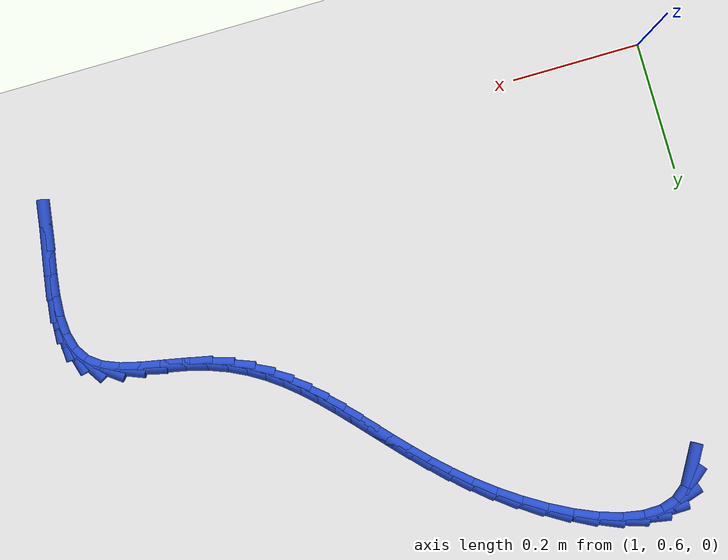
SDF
<sdf version="1.6">
 <world name="default">
  <model name="ground_plane">
   <static>1</static>
   <link name="link">
    <collision name="collision">
     <geometry><plane><normal>0 0 1</normal><size>100 100</size></plane></geometry>
     <surface><friction><ode><mu>100</mu><mu2>50</mu2></ode></friction></surface>
    </collision>
    <visual name="visual">
     <cast_shadows>0</cast_shadows>
     <geometry><plane><normal>0 0 1</normal><size>100 100</size></plane></geometry>
     <material>
      <script><uri>file://media/materials/scripts/gazebo.material</uri><name>Gazebo/WhiteGlow</name></script>
     </material>
    </visual>
   </link>
  </model>
  <model name="line">
   <link name="link_57">
    <pose>1.1085164473224831 1.2484397005960615 0.01 0 1.57 1.0574062370758766</pose>
    <collision name="collision">
     <geometry><cylinder><radius>0.01</radius><length>0.08</length></cylinder></geometry>
    </collision>
    <visual name="visual">
     <material>
      <script><name>Gazebo/Blue</name><uri>file://media/materials/scripts/gazebo.material</uri></script>
     </material>
     <geometry><cylinder><radius>0.01</radius><length>0.08</length></cylinder></geometry>
    </visual>
   </link>
   <link name="link_58">
    <pose>1.1227737843923586 1.2737268280903375 0.01 0 1.57 0.6829167306893079</pose>
    <collision name="collision">
     <geometry><cylinder><radius>0.01</radius><length>0.08</length></cylinder></geometry>
    </collision>
    <visual name="visual">
     <material>
      <script><name>Gazebo/Blue</name><uri>file://media/materials/scripts/gazebo.material</uri></script>
     </material>
     <geometry><cylinder><radius>0.01</radius><length>0.08</length></cylinder></geometry>
    </visual>
   </link>
   <link name="link_59">
    <pose>1.1429402737580883 1.2901322041058931 0.01 0 1.57 0.30402561338667844</pose>
    <collision name="collision">
     <geometry><cylinder><radius>0.01</radius><length>0.08</length></cylinder></geometry>
    </collision>
    <visual name="visual">
     <material>
      <script><name>Gazebo/Blue</name><uri>file://media/materials/scripts/gazebo.material</uri></script>
     </material>
     <geometry><cylinder><radius>0.01</radius><length>0.08</length></cylinder></geometry>
    </visual>
   </link>
   <link name="link_60">
    <pose>1.1683809665544618 1.2981142874375293 0.01 0 1.57 0.018539822388963713</pose>
    <collision name="collision">
     <geometry><cylinder><radius>0.01</radius><length>0.08</length></cylinder></geometry>
    </collision>
    <visual name="visual">
     <material>
      <script><name>Gazebo/Blue</name><uri>file://media/materials/scripts/gazebo.material</uri></script>
     </material>
     <geometry><cylinder><radius>0.01</radius><length>0.08</length></cylinder></geometry>
    </visual>
   </link>
   <link name="link_61">
    <pose>1.1980496005774814 1.2986644016736248 0.01 0 1.57 -0.17742868964590694</pose>
    <collision name="collision">
     <geometry><cylinder><radius>0.01</radius><length>0.08</length></cylinder></geometry>
    </collision>
    <visual name="visual">
     <material>
      <script><name>Gazebo/Blue</name><uri>file://media/materials/scripts/gazebo.material</uri></script>
     </material>
     <geometry><cylinder><radius>0.01</radius><length>0.08</length></cylinder></geometry>
    </visual>
   </link>
   <link name="link_62">
    <pose>1.2308999136231462 1.2927738704025564 0.01 0 1.57 -0.3134429651024757</pose>
    <collision name="collision">
     <geometry><cylinder><radius>0.01</radius><length>0.08</length></cylinder></geometry>
    </collision>
    <visual name="visual">
     <material>
      <script><name>Gazebo/Blue</name><uri>file://media/materials/scripts/gazebo.material</uri></script>
     </material>
     <geometry><cylinder><radius>0.01</radius><length>0.08</length></cylinder></geometry>
    </visual>
   </link>
   <link name="link_63">
    <pose>1.2658856434874581 1.2814340172127026 0.01 0 1.57 -0.4127614722598683</pose>
    <collision name="collision">
     <geometry><cylinder><radius>0.01</radius><length>0.08</length></cylinder></geometry>
    </collision>
    <visual name="visual">
     <material>
      <script><name>Gazebo/Blue</name><uri>file://media/materials/scripts/gazebo.material</uri></script>
     </material>
     <geometry><cylinder><radius>0.01</radius><length>0.08</length></cylinder></geometry>
    </visual>
   </link>
   <link name="link_64">
    <pose>1.3019605279664164 1.2656361656924413 0.01 0 1.57 -0.4899942273169205</pose>
    <collision name="collision">
     <geometry><cylinder><radius>0.01</radius><length>0.08</length></cylinder></geometry>
    </collision>
    <visual name="visual">
     <material>
      <script><name>Gazebo/Blue</name><uri>file://media/materials/scripts/gazebo.material</uri></script>
     </material>
     <geometry><cylinder><radius>0.01</radius><length>0.08</length></cylinder></geometry>
    </visual>
   </link>
   <link name="link_65">
    <pose>1.3380783048560216 1.2463716394301498 0.01 0 1.57 -0.5543566456657815</pose>
    <collision name="collision">
     <geometry><cylinder><radius>0.01</radius><length>0.08</length></cylinder></geometry>
    </collision>
    <visual name="visual">
     <material>
      <script><name>Gazebo/Blue</name><uri>file://media/materials/scripts/gazebo.material</uri></script>
     </material>
     <geometry><cylinder><radius>0.01</radius><length>0.08</length></cylinder></geometry>
    </visual>
   </link>
   <link name="link_66">
    <pose>1.3731927119522758 1.2246317620142066 0.01 0 1.57 -0.6123130681663237</pose>
    <collision name="collision">
     <geometry><cylinder><radius>0.01</radius><length>0.08</length></cylinder></geometry>
    </collision>
    <visual name="visual">
     <material>
      <script><name>Gazebo/Blue</name><uri>file://media/materials/scripts/gazebo.material</uri></script>
     </material>
     <geometry><cylinder><radius>0.01</radius><length>0.08</length></cylinder></geometry>
    </visual>
   </link>
   <link name="link_67">
    <pose>1.40625941168226 1.2014067895443796 0.01 0 1.57 -0.6675079966193087</pose>
    <collision name="collision">
     <geometry><cylinder><radius>0.01</radius><length>0.08</length></cylinder></geometry>
    </collision>
    <visual name="visual">
     <material>
      <script><name>Gazebo/Blue</name><uri>file://media/materials/scripts/gazebo.material</uri></script>
     </material>
     <geometry><cylinder><radius>0.01</radius><length>0.08</length></cylinder></geometry>
    </visual>
   </link>
   <link name="link_68">
    <pose>1.4366348558494482 1.1774646819627517 0.01 0 1.57 -0.7177215172570065</pose>
    <collision name="collision">
     <geometry><cylinder><radius>0.01</radius><length>0.08</length></cylinder></geometry>
    </collision>
    <visual name="visual">
     <material>
      <script><name>Gazebo/Blue</name><uri>file://media/materials/scripts/gazebo.material</uri></script>
     </material>
     <geometry><cylinder><radius>0.01</radius><length>0.08</length></cylinder></geometry>
    </visual>
   </link>
   <link name="link_69">
    <pose>1.464566184350316 1.1530793827717698 0.01 0 1.57 -0.7609706291626978</pose>
    <collision name="collision">
     <geometry><cylinder><radius>0.01</radius><length>0.08</length></cylinder></geometry>
    </collision>
    <visual name="visual">
     <material>
      <script><name>Gazebo/Blue</name><uri>file://media/materials/scripts/gazebo.material</uri></script>
     </material>
     <geometry><cylinder><radius>0.01</radius><length>0.08</length></cylinder></geometry>
    </visual>
   </link>
   <link name="link_70">
    <pose>1.4904205084487963 1.1284582938547942 0.01 0 1.57 -0.7957483851435907</pose>
    <collision name="collision">
     <geometry><cylinder><radius>0.01</radius><length>0.08</length></cylinder></geometry>
    </collision>
    <visual name="visual">
     <material>
      <script><name>Gazebo/Blue</name><uri>file://media/materials/scripts/gazebo.material</uri></script>
     </material>
     <geometry><cylinder><radius>0.01</radius><length>0.08</length></cylinder></geometry>
    </visual>
   </link>
   <link name="link_71">
    <pose>1.5145649394088203 1.1038088170951867 0.01 0 1.57 -0.8206857956574665</pose>
    <collision name="collision">
     <geometry><cylinder><radius>0.01</radius><length>0.08</length></cylinder></geometry>
    </collision>
    <visual name="visual">
     <material>
      <script><name>Gazebo/Blue</name><uri>file://media/materials/scripts/gazebo.material</uri></script>
     </material>
     <geometry><cylinder><radius>0.01</radius><length>0.08</length></cylinder></geometry>
    </visual>
   </link>
   <link name="link_72">
    <pose>1.5373665884943204 1.0793383543763067 0.01 0 1.57 -0.8345432050714073</pose>
    <collision name="collision">
     <geometry><cylinder><radius>0.01</radius><length>0.08</length></cylinder></geometry>
    </collision>
    <visual name="visual">
     <material>
      <script><name>Gazebo/Blue</name><uri>file://media/materials/scripts/gazebo.material</uri></script>
     </material>
     <geometry><cylinder><radius>0.01</radius><length>0.08</length></cylinder></geometry>
    </visual>
   </link>
   <link name="link_73">
    <pose>1.559192566969228 1.0552543075815153 0.01 0 1.57 -0.8361915963478432</pose>
    <collision name="collision">
     <geometry><cylinder><radius>0.01</radius><length>0.08</length></cylinder></geometry>
    </collision>
    <visual name="visual">
     <material>
      <script><name>Gazebo/Blue</name><uri>file://media/materials/scripts/gazebo.material</uri></script>
     </material>
     <geometry><cylinder><radius>0.01</radius><length>0.08</length></cylinder></geometry>
    </visual>
   </link>
   <link name="link_74">
    <pose>1.5804099860974758 1.0317640785941733 0.01 0 1.57 -0.8246094535677373</pose>
    <collision name="collision">
     <geometry><cylinder><radius>0.01</radius><length>0.08</length></cylinder></geometry>
    </collision>
    <visual name="visual">
     <material>
      <script><name>Gazebo/Blue</name><uri>file://media/materials/scripts/gazebo.material</uri></script>
     </material>
     <geometry><cylinder><radius>0.01</radius><length>0.08</length></cylinder></geometry>
    </visual>
   </link>
   <link name="link_75">
    <pose>1.6013859571429945 1.0090750692976413 0.01 0 1.57 -0.7989252985837583</pose>
    <collision name="collision">
     <geometry><cylinder><radius>0.01</radius><length>0.08</length></cylinder></geometry>
    </collision>
    <visual name="visual">
     <material>
      <script><name>Gazebo/Blue</name><uri>file://media/materials/scripts/gazebo.material</uri></script>
     </material>
     <geometry><cylinder><radius>0.01</radius><length>0.08</length></cylinder></geometry>
    </visual>
   </link>
   <link name="link_76">
    <pose>1.6224875913697177 0.9873946815752804 0.01 0 1.57 -0.7585364049812264</pose>
    <collision name="collision">
     <geometry><cylinder><radius>0.01</radius><length>0.08</length></cylinder></geometry>
    </collision>
    <visual name="visual">
     <material>
      <script><name>Gazebo/Blue</name><uri>file://media/materials/scripts/gazebo.material</uri></script>
     </material>
     <geometry><cylinder><radius>0.01</radius><length>0.08</length></cylinder></geometry>
    </visual>
   </link>
   <link name="link_77">
    <pose>1.6440820000415761 0.9669303173104505 0.01 0 1.57 -0.7033239725984757</pose>
    <collision name="collision">
     <geometry><cylinder><radius>0.01</radius><length>0.08</length></cylinder></geometry>
    </collision>
    <visual name="visual">
     <material>
      <script><name>Gazebo/Blue</name><uri>file://media/materials/scripts/gazebo.material</uri></script>
     </material>
     <geometry><cylinder><radius>0.01</radius><length>0.08</length></cylinder></geometry>
    </visual>
   </link>
   <link name="link_78">
    <pose>1.6665362944225022 0.9478893783865131 0.01 0 1.57 -0.633951383910856</pose>
    <collision name="collision">
     <geometry><cylinder><radius>0.01</radius><length>0.08</length></cylinder></geometry>
    </collision>
    <visual name="visual">
     <material>
      <script><name>Gazebo/Blue</name><uri>file://media/materials/scripts/gazebo.material</uri></script>
     </material>
     <geometry><cylinder><radius>0.01</radius><length>0.08</length></cylinder></geometry>
    </visual>
   </link>
   <link name="link_79">
    <pose>1.6902175857764274 0.9304792666868279 0.01 0 1.57 -0.552165352754267</pose>
    <collision name="collision">
     <geometry><cylinder><radius>0.01</radius><length>0.08</length></cylinder></geometry>
    </collision>
    <visual name="visual">
     <material>
      <script><name>Gazebo/Blue</name><uri>file://media/materials/scripts/gazebo.material</uri></script>
     </material>
     <geometry><cylinder><radius>0.01</radius><length>0.08</length></cylinder></geometry>
    </visual>
   </link>
   <link name="link_80">
    <pose>1.715492985367284 0.9149073840947566 0.01 0 1.57 -0.460940008691091</pose>
    <collision name="collision">
     <geometry><cylinder><radius>0.01</radius><length>0.08</length></cylinder></geometry>
    </collision>
    <visual name="visual">
     <material>
      <script><name>Gazebo/Blue</name><uri>file://media/materials/scripts/gazebo.material</uri></script>
     </material>
     <geometry><cylinder><radius>0.01</radius><length>0.08</length></cylinder></geometry>
    </visual>
   </link>
   <link name="link_81">
    <pose>1.7427296044590042 0.9013811324936591 0.01 0 1.57 -0.36428553761647997</pose>
    <collision name="collision">
     <geometry><cylinder><radius>0.01</radius><length>0.08</length></cylinder></geometry>
    </collision>
    <visual name="visual">
     <material>
      <script><name>Gazebo/Blue</name><uri>file://media/materials/scripts/gazebo.material</uri></script>
     </material>
     <geometry><cylinder><radius>0.01</radius><length>0.08</length></cylinder></geometry>
    </visual>
   </link>
   <link name="link_82">
    <pose>1.7722945543155193 0.8901079137668967 0.01 0 1.57 -0.26734253740722536</pose>
    <collision name="collision">
     <geometry><cylinder><radius>0.01</radius><length>0.08</length></cylinder></geometry>
    </collision>
    <visual name="visual">
     <material>
      <script><name>Gazebo/Blue</name><uri>file://media/materials/scripts/gazebo.material</uri></script>
     </material>
     <geometry><cylinder><radius>0.01</radius><length>0.08</length></cylinder></geometry>
    </visual>
   </link>
   <link name="link_83">
    <pose>1.8045316796122735 0.8812781902708591 0.01 0 1.57 -0.20011474742865712</pose>
    <collision name="collision">
     <geometry><cylinder><radius>0.01</radius><length>0.08</length></cylinder></geometry>
    </collision>
    <visual name="visual">
     <material>
      <script><name>Gazebo/Blue</name><uri>file://media/materials/scripts/gazebo.material</uri></script>
     </material>
     <geometry><cylinder><radius>0.01</radius><length>0.08</length></cylinder></geometry>
    </visual>
   </link>
   <link name="link_84">
    <pose>1.8387593439414476 0.874335810199903 0.01 0 1.57 -0.19201932179187844</pose>
    <collision name="collision">
     <geometry><cylinder><radius>0.01</radius><length>0.08</length></cylinder></geometry>
    </collision>
    <visual name="visual">
     <material>
      <script><name>Gazebo/Blue</name><uri>file://media/materials/scripts/gazebo.material</uri></script>
     </material>
     <geometry><cylinder><radius>0.01</radius><length>0.08</length></cylinder></geometry>
    </visual>
   </link>
   <link name="link_85">
    <pose>1.8728892186223187 0.867700462073753 0.01 0 1.57 -0.2456393977930704</pose>
    <collision name="collision">
     <geometry><cylinder><radius>0.01</radius><length>0.08</length></cylinder></geometry>
    </collision>
    <visual name="visual">
     <material>
      <script><name>Gazebo/Blue</name><uri>file://media/materials/scripts/gazebo.material</uri></script>
     </material>
     <geometry><cylinder><radius>0.01</radius><length>0.08</length></cylinder></geometry>
    </visual>
   </link>
   <link name="link_86">
    <pose>1.9047310703491966 0.8597176414919346 0.01 0 1.57 -0.3817457446013552</pose>
    <collision name="collision">
     <geometry><cylinder><radius>0.01</radius><length>0.08</length></cylinder></geometry>
    </collision>
    <visual name="visual">
     <material>
      <script><name>Gazebo/Blue</name><uri>file://media/materials/scripts/gazebo.material</uri></script>
     </material>
     <geometry><cylinder><radius>0.01</radius><length>0.08</length></cylinder></geometry>
    </visual>
   </link>
   <link name="link_87">
    <pose>1.9320946658163918 0.8487328440539732 0.01 0 1.57 -0.6457010068586142</pose>
    <collision name="collision">
     <geometry><cylinder><radius>0.01</radius><length>0.08</length></cylinder></geometry>
    </collision>
    <visual name="visual">
     <material>
      <script><name>Gazebo/Blue</name><uri>file://media/materials/scripts/gazebo.material</uri></script>
     </material>
     <geometry><cylinder><radius>0.01</radius><length>0.08</length></cylinder></geometry>
    </visual>
   </link>
   <link name="link_88">
    <pose>1.952823001025882 0.8331152244288017 0.01 0 1.57 -1.0034593341175067</pose>
    <collision name="collision">
     <geometry><cylinder><radius>0.01</radius><length>0.08</length></cylinder></geometry>
    </collision>
    <visual name="visual">
     <material>
      <script><name>Gazebo/Blue</name><uri>file://media/materials/scripts/gazebo.material</uri></script>
     </material>
     <geometry><cylinder><radius>0.01</radius><length>0.08</length></cylinder></geometry>
    </visual>
   </link>
   <link name="link_89">
    <pose>1.9661397437749666 0.8122169673912474 0.01 0 1.57 -1.303896228810537</pose>
    <collision name="collision">
     <geometry><cylinder><radius>0.01</radius><length>0.08</length></cylinder></geometry>
    </collision>
    <visual name="visual">
     <material>
      <script><name>Gazebo/Blue</name><uri>file://media/materials/scripts/gazebo.material</uri></script>
     </material>
     <geometry><cylinder><radius>0.01</radius><length>0.08</length></cylinder></geometry>
    </visual>
   </link>
   <link name="link_90">
    <pose>1.9731152874033415 0.7867051153178107 0.01 0 1.57 -1.508437109540967</pose>
    <collision name="collision">
     <geometry><cylinder><radius>0.01</radius><length>0.08</length></cylinder></geometry>
    </collision>
    <visual name="visual">
     <material>
      <script><name>Gazebo/Blue</name><uri>file://media/materials/scripts/gazebo.material</uri></script>
     </material>
     <geometry><cylinder><radius>0.01</radius><length>0.08</length></cylinder></geometry>
    </visual>
   </link>
   <link name="link_91">
    <pose>1.9749489439962193 0.7573384999649808 0.01 0 1.57 1.5059228273670535</pose>
    <collision name="collision">
     <geometry><cylinder><radius>0.01</radius><length>0.08</length></cylinder></geometry>
    </collision>
    <visual name="visual">
     <material>
      <script><name>Gazebo/Blue</name><uri>file://media/materials/scripts/gazebo.material</uri></script>
     </material>
     <geometry><cylinder><radius>0.01</radius><length>0.08</length></cylinder></geometry>
    </visual>
   </link>
   <link name="link_92">
    <pose>1.972840025638814 0.7248759530892452 0.01 0 1.57 1.4322575975261949</pose>
    <collision name="collision">
     <geometry><cylinder><radius>0.01</radius><length>0.08</length></cylinder></geometry>
    </collision>
    <visual name="visual">
     <material>
      <script><name>Gazebo/Blue</name><uri>file://media/materials/scripts/gazebo.material</uri></script>
     </material>
     <geometry><cylinder><radius>0.01</radius><length>0.08</length></cylinder></geometry>
    </visual>
   </link>
   <link name="link_93">
    <pose>1.9679878444163381 0.6900763064470925 0.01 0 1.57 1.3967506832343952</pose>
    <collision name="collision">
     <geometry><cylinder><radius>0.01</radius><length>0.08</length></cylinder></geometry>
    </collision>
    <visual name="visual">
     <material>
      <script><name>Gazebo/Blue</name><uri>file://media/materials/scripts/gazebo.material</uri></script>
     </material>
     <geometry><cylinder><radius>0.01</radius><length>0.08</length></cylinder></geometry>
    </visual>
   </link>
   <link name="link_94">
    <pose>1.9615917124140043 0.6536983917950098 0.01 0 1.57 1.3915253958359084</pose>
    <collision name="collision">
     <geometry><cylinder><radius>0.01</radius><length>0.08</length></cylinder></geometry>
    </collision>
    <visual name="visual">
     <material>
      <script><name>Gazebo/Blue</name><uri>file://media/materials/scripts/gazebo.material</uri></script>
     </material>
     <geometry><cylinder><radius>0.01</radius><length>0.08</length></cylinder></geometry>
    </visual>
   </link>
   <link name="link_95">
    <pose>1.954850941717026 0.6165010408894864 0.01 0 1.57 1.4141090224717117</pose>
    <collision name="collision">
     <geometry><cylinder><radius>0.01</radius><length>0.08</length></cylinder></geometry>
    </collision>
    <visual name="visual">
     <material>
      <script><name>Gazebo/Blue</name><uri>file://media/materials/scripts/gazebo.material</uri></script>
     </material>
     <geometry><cylinder><radius>0.01</radius><length>0.08</length></cylinder></geometry>
    </visual>
   </link>
  </model>
 </world>
</sdf>
